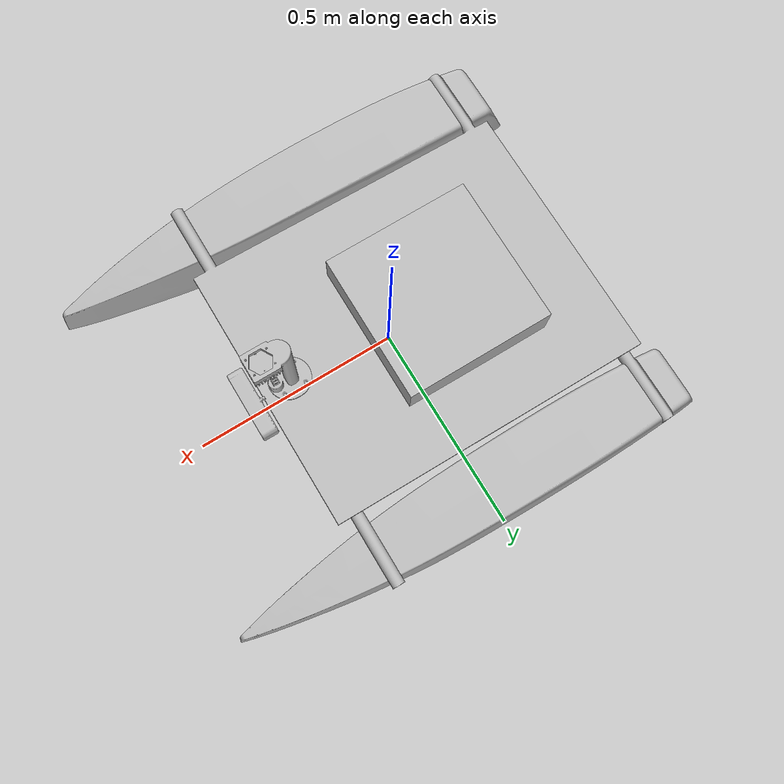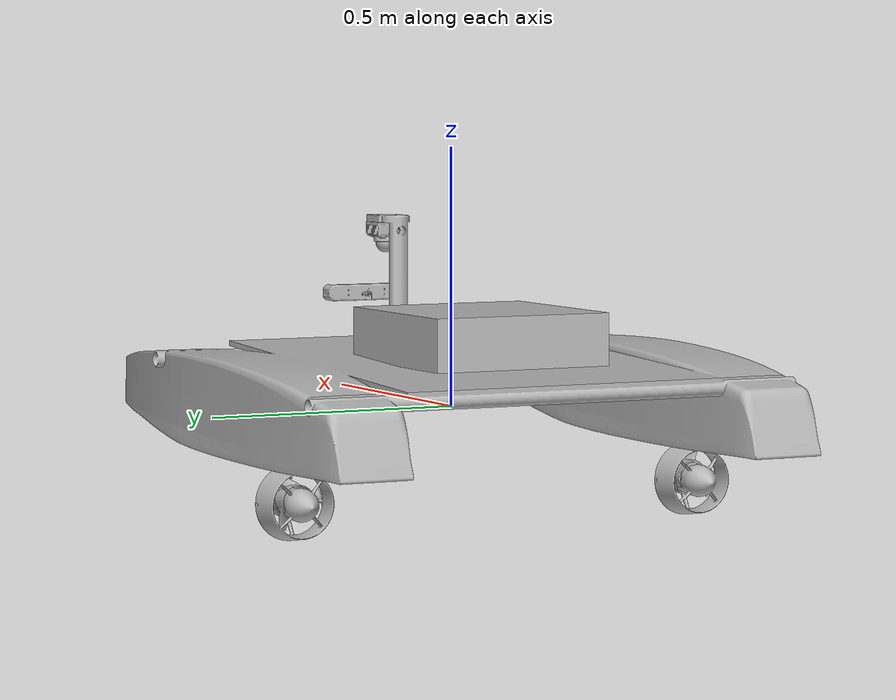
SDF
<?xml version="1.0" ?>
<sdf version="1.6">
  <model name="njord_usv">
    <link name="base_link">
      <pose>0 0 0 0 0 0</pose>
      <inertial>
        <mass>17</mass>
        <inertia>
          <ixx>1.256398</ixx>
          <ixy>-0.004728</ixy>
          <ixz>-0.028444</ixz>
          <iyy>1.475879</iyy>
          <iyz>-0.001714</iyz>
          <izz>2.65594</izz>
        </inertia>
      </inertial>
      <visual name="visual">
        <pose>0.045206 0.000013 0.019826 0 0 0</pose>
        <geometry>
          <mesh>
            <uri>package://usv/models/njord_usv/meshes/base_link_visual.obj</uri>
          </mesh>
        </geometry>
      </visual>
      <collision name="collision">
        <pose>0.045208 0.000011 0.019826 0 0 0</pose>
        <geometry>
          <mesh>
            <uri>package://usv/models/njord_usv/meshes/base_link_collision.stl</uri>
          </mesh>
        </geometry>
      </collision>
    </link>

    <link name="electronics_box_link">
      <pose>-0.121332 0.001791 0.145235 0 0 0</pose>
      <inertial>
        <mass>2</mass>
        <inertia>
          <ixx>0.023267</ixx>
          <ixy>0</ixy>
          <ixz>0</ixz>
          <iyy>0.023267</iyy>
          <iyz>0</iyz>
          <izz>0.0432</izz>
        </inertia>
      </inertial>
      <visual name="visual">
        <geometry>
          <box>
            <size>0.36 0.36 0.1</size>
          </box>
        </geometry>
      </visual>
      <collision name="collision">
        <geometry>
          <box>
            <size>0.36 0.36 0.1</size>
          </box>
        </geometry>
      </collision>
    </link>

    <link name="left_chasis_link">
      <pose>-0.187331 0.42177 -0.136975 0 0 0</pose>
      <inertial>
        <mass>0.6</mass>
        <inertia>
          <ixx>0.001182</ixx>
          <ixy>0</ixy>
          <ixz>0.000004</ixz>
          <iyy>0.0011</iyy>
          <iyz>0.000002</iyz>
          <izz>0.001073</izz>
        </inertia>
      </inertial>
      <visual name="visual">
        <pose>-0.011552 -0.001199 -0.005078 0 0 0</pose>
        <geometry>
          <mesh>
            <uri>package://usv/models/njord_usv/meshes/left_chasis_link_visual.obj</uri>
          </mesh>
        </geometry>
      </visual>
      <collision name="collision">
        <pose>-0.011552 -0.001199 -0.005078 0 0 0</pose>
        <geometry>
          <mesh>
            <uri>package://usv/models/njord_usv/meshes/left_chasis_link_collision.stl</uri>
          </mesh>
        </geometry>
      </collision>
    </link>

    <link name="left_propeller_link">
      <pose>-0.187331 0.42177 -0.136975 0 0 0</pose>
      <inertial>
        <mass>0.13</mass>
        <inertia>
          <ixx>0.000112</ixx>
          <ixy>0</ixy>
          <ixz>0</ixz>
          <iyy>0.000074</iyy>
          <iyz>0</iyz>
          <izz>0.000074</izz>
        </inertia>
      </inertial>
      <visual name="visual">
        <pose>-0.002943 -0.008474 -0.003957 0 0 0</pose>
        <geometry>
          <mesh>
            <uri>package://usv/models/njord_usv/meshes/left_propeller_link_visual.obj</uri>
          </mesh>
        </geometry>
      </visual>
      <collision name="collision">
        <pose>-0.002944 -0.008474 -0.003957 0 0 0</pose>
        <geometry>
          <mesh>
            <uri>package://usv/models/njord_usv/meshes/left_propeller_link_collision.stl</uri>
          </mesh>
        </geometry>
      </collision>
    </link>

    <!-- Barometer - For PX4 SITL Preflight Check Fix -->

    <link name="barometer_link">
      <pose>0 0 0 0 0 0</pose>

      <sensor name="air_pressure_sensor" type="air_pressure">
        <gz_frame_id>barometer_link</gz_frame_id>
				<always_on>1</always_on>
				<update_rate>50</update_rate>
				<air_pressure>
					<pressure>
						<noise type="gaussian">
							<mean>0</mean>
							<stddev>0.01</stddev>
						</noise>
					</pressure>
				</air_pressure>
			</sensor>
    </link>

    <joint name="barometer_joint" type="fixed">
      <parent>base_link</parent>
      <child>barometer_link</child>
    </joint>

    <link name="lidar_camera_mount_link">
      <pose>0.279247 -0.011004 0.202049 0 0 0</pose>
      <inertial>
        <mass>0.1</mass>
        <inertia>
          <ixx>0.000567</ixx>
          <ixy>0</ixy>
          <ixz>-0.000065</ixz>
          <iyy>0.000601</iyy>
          <iyz>0.000001</iyz>
          <izz>0.00012</izz>
        </inertia>
      </inertial>
      <visual name="visual">
        <pose>-0.009476 0.003052 0.034499 0 0 0</pose>
        <geometry>
          <mesh>
            <uri>package://usv/models/njord_usv/meshes/lidar_camera_mount_link_visual.obj</uri>
          </mesh>
        </geometry>
      </visual>
      <collision name="collision">
        <pose>-0.009476 0.003052 0.034499 0 0 0</pose>
        <geometry>
          <mesh>
            <uri>package://usv/models/njord_usv/meshes/lidar_camera_mount_link_collision.stl</uri>
          </mesh>
        </geometry>
      </collision>
    </link>

    <link name="lidar_link">
      <pose>0.293147 -0.006652 0.3 3.14159 0 0</pose>
      <inertial>
        <mass>0.265</mass>
        <inertia>
          <ixx>0.000123</ixx>
          <ixy>0</ixy>
          <ixz>0.000001</ixz>
          <iyy>0.000133</iyy>
          <iyz>0</iyz>
          <izz>0.00015</izz>
        </inertia>
      </inertial>
      <visual name="visual">
        <pose>0.005373 0.000172 -0.014212 0 0 0</pose>
        <geometry>
          <mesh>
            <uri>package://usv/models/njord_usv/meshes/lidar_link_visual.obj</uri>
          </mesh>
        </geometry>
      </visual>
      <collision name="collision">
        <pose>0.005372 0.000172 -0.014212 0 0 0</pose>
        <geometry>
          <mesh>
            <uri>package://usv/models/njord_usv/meshes/lidar_link_collision.stl</uri>
          </mesh>
        </geometry>
      </collision>
      <sensor name="livox_lidar" type="gpu_lidar">
        <gz_frame_id>lidar_link</gz_frame_id>
        <always_on>true</always_on>
        <update_rate>10</update_rate>
        <visualize>false</visualize>
        <pose>0 0 -0.02 0 0 0</pose>
        <ray>
          <visibility_mask>4294967293</visibility_mask>
          <scan>
            <horizontal>
              <samples>1080</samples>
              <resolution>1</resolution>
              <min_angle>-3.141593</min_angle>
              <max_angle>3.141593</max_angle>
            </horizontal>
            <vertical>
              <samples>16</samples>
              <resolution>1</resolution>
              <min_angle>-0.08727</min_angle>
              <max_angle>0.08727</max_angle>
            </vertical>
          </scan>
          <range>
            <min>0.1</min>
            <max>40</max>
            <resolution>0.01</resolution>
          </range>
        </ray>
      </sensor>
    </link>
    <link name="right_chasis_link">
      <pose>-0.187331 -0.418227 -0.136975 0 0 0</pose>
      <inertial>
        <mass>0.6</mass>
        <inertia>
          <ixx>0.001181</ixx>
          <ixy>0</ixy>
          <ixz>0.000005</ixz>
          <iyy>0.0011</iyy>
          <iyz>0</iyz>
          <izz>0.001074</izz>
        </inertia>
      </inertial>
      <visual name="visual">
        <pose>-0.01155 -0.001195 -0.005076 0 0 0</pose>
        <geometry>
          <mesh>
            <uri>package://usv/models/njord_usv/meshes/right_chasis_link_visual.obj</uri>
          </mesh>
        </geometry>
      </visual>
      <collision name="collision">
        <pose>-0.01155 -0.001195 -0.005076 0 0 0</pose>
        <geometry>
          <mesh>
            <uri>package://usv/models/njord_usv/meshes/right_chasis_link_collision.stl</uri>
          </mesh>
        </geometry>
      </collision>
    </link>

    <link name="right_propeller_link">
      <pose>-0.187331 -0.418227 -0.136975 0 0 0</pose>
      <inertial>
        <mass>0.13</mass>
        <inertia>
          <ixx>0.000112</ixx>
          <ixy>0</ixy>
          <ixz>0</ixz>
          <iyy>0.000074</iyy>
          <iyz>0</iyz>
          <izz>0.000074</izz>
        </inertia>
      </inertial>
      <visual name="visual">
        <pose>0.002943 0.003983 0.008494 0 0 0</pose>
        <geometry>
          <mesh>
            <uri>package://usv/models/njord_usv/meshes/right_propeller_link_visual.obj</uri>
          </mesh>
        </geometry>
      </visual>
      <collision name="collision">
        <pose>0.002943 0.003983 0.008494 0 0 0</pose>
        <geometry>
          <mesh>
            <uri>package://usv/models/njord_usv/meshes/right_propeller_link_collision.stl</uri>
          </mesh>
        </geometry>
      </collision>
    </link>

    <link name="zed_camera_link">
      <pose>0.345378 0.02 0.2 0 0 0</pose>
      <inertial>
        <mass>0.24</mass>
        <inertia>
          <ixx>0.000056</ixx>
          <ixy>0</ixy>
          <ixz>0.000002</ixz>
          <iyy>0.000503</iyy>
          <iyz>0</iyz>
          <izz>0.000517</izz>
        </inertia>
      </inertial>
      <visual name="visual">
        <pose>0.004301 0.001346 0.001671 0 0 -1.570796</pose>
        <geometry>
          <mesh>
            <uri>package://usv/models/njord_usv/meshes/zed_camera_link_visual.obj</uri>
          </mesh>
        </geometry>
      </visual>
      <collision name="collision">
        <pose>0.004301 0.001343 0.001671 0 0 0</pose>
        <geometry>
          <mesh>
            <uri>package://usv/models/njord_usv/meshes/zed_camera_link_collision.stl</uri>
          </mesh>
        </geometry>
      </collision>
      <sensor name="zed_camera" type="camera">
        <gz_frame_id>zed_camera_link_optical</gz_frame_id>
        <always_on>true</always_on>
        <update_rate>10</update_rate>
        <visualize>false</visualize>
        <pose relative_to="zed_camera_link">0.04 0 0 0 0 0</pose>
        <camera>
          <horizontal_fov>1.919862</horizontal_fov>
          <image>
            <width>960</width>
            <height>600</height>
            <format>R8G8B8</format>
          </image>
          <clip>
            <near>0.02</near>
            <far>300</far>
          </clip>
        </camera>
      </sensor>
      <sensor name="zed_depth_camera" type="depth_camera">
        <gz_frame_id>zed_camera_link_optical</gz_frame_id>
        <always_on>true</always_on>
        <update_rate>10</update_rate>
        <visualize>false</visualize>
        <pose relative_to="zed_camera_link">0.04 0 0 0 0 0</pose>
        <camera>
          <horizontal_fov>1.919862</horizontal_fov>
          <image>
            <width>960</width>
            <height>600</height>
            <format>R_FLOAT32</format>
          </image>
          <clip>
            <near>0.5</near>
            <far>20</far>
          </clip>
        </camera>
        <depth_camera>
          <output>
            <type>depth</type>
          </output>
        </depth_camera>
      </sensor>
    </link>

    <link name="zed_camera_link_optical">
    </link>

    <link name="navsat_link">
      <pose>0.0 0.0 0.1 0 0 0</pose>
      <sensor name="navsat_sensor" type="navsat">
        <gz_frame_id>navsat_link</gz_frame_id>
        <pose>0.0 0.0 0.05 0 0 0</pose>
        <always_on>1</always_on>
        <update_rate>30</update_rate>
      </sensor>
    </link>

    <link name="imu_link">
      <pose>0.0 0.0 0.1 0 0 0</pose>
      <sensor name="imu_sensor" type="imu">
        <gz_frame_id>imu_link</gz_frame_id>
        <always_on>1</always_on>
        <update_rate>250</update_rate>
        <imu>
          <angular_velocity>
            <x>
              <noise type="gaussian">
                <mean>0</mean>
                <stddev>0.0003394</stddev>
                <dynamic_bias_stddev>3.8785e-05</dynamic_bias_stddev>
                <dynamic_bias_correlation_time>1000</dynamic_bias_correlation_time>
              </noise>
            </x>
            <y>
              <noise type="gaussian">
                <mean>0</mean>
                <stddev>0.0003394</stddev>
                <dynamic_bias_stddev>3.8785e-05</dynamic_bias_stddev>
                <dynamic_bias_correlation_time>1000</dynamic_bias_correlation_time>
              </noise>
            </y>
            <z>
              <noise type="gaussian">
                <mean>0</mean>
                <stddev>0.0003394</stddev>
                <dynamic_bias_stddev>3.8785e-05</dynamic_bias_stddev>
                <dynamic_bias_correlation_time>1000</dynamic_bias_correlation_time>
              </noise>
            </z>
          </angular_velocity>
          <linear_acceleration>
            <x>
              <noise type="gaussian">
                <mean>0</mean>
                <stddev>0.004</stddev>
                <dynamic_bias_stddev>0.006</dynamic_bias_stddev>
                <dynamic_bias_correlation_time>300</dynamic_bias_correlation_time>
              </noise>
            </x>
            <y>
              <noise type="gaussian">
                <mean>0</mean>
                <stddev>0.004</stddev>
                <dynamic_bias_stddev>0.006</dynamic_bias_stddev>
                <dynamic_bias_correlation_time>300</dynamic_bias_correlation_time>
              </noise>
            </y>
            <z>
              <noise type="gaussian">
                <mean>0</mean>
                <stddev>0.004</stddev>
                <dynamic_bias_stddev>0.006</dynamic_bias_stddev>
                <dynamic_bias_correlation_time>300</dynamic_bias_correlation_time>
              </noise>
            </z>
          </linear_acceleration>
        </imu>
      </sensor>
    </link>

    <joint name="electronics_box_joint" type="fixed">
      <parent>base_link</parent>
      <child>electronics_box_link</child>
    </joint>
    <joint name="left_chasis_engine_joint" type="fixed">
      <parent>base_link</parent>
      <child>left_chasis_link</child>
    </joint>
    <joint name="left_engine_propeller_joint" type="revolute">
      <parent>left_chasis_link</parent>
      <child>left_propeller_link</child>
      <axis>
        <xyz>1 0 0</xyz>
        <limit>
          <lower>-inf</lower>
          <upper>inf</upper>
          <effort>100</effort>
          <velocity>100</velocity>
        </limit>
        <dynamics>
          <damping>0.05</damping>
          <friction>0.05</friction>
        </dynamics>
      </axis>
    </joint>
    <joint name="lidar_camera_mount_joint" type="fixed">
      <parent>base_link</parent>
      <child>lidar_camera_mount_link</child>
    </joint>
    <joint name="lidar_link_joint" type="fixed">
      <parent>lidar_camera_mount_link</parent>
      <child>lidar_link</child>
    </joint>
    <joint name="right_chasis_link_joint" type="fixed">
      <parent>base_link</parent>
      <child>right_chasis_link</child>
    </joint>
    <joint name="right_engine_propeller_joint" type="revolute">
      <parent>right_chasis_link</parent>
      <child>right_propeller_link</child>
      <axis>
        <xyz>1 0 0</xyz>
        <limit>
          <lower>-inf</lower>
          <upper>inf</upper>
          <effort>100</effort>
          <velocity>100</velocity>
        </limit>
        <dynamics>
          <damping>0.05</damping>
          <friction>0.05</friction>
        </dynamics>
      </axis>
    </joint>
    <joint name="zed_camera_link_joint" type="fixed">
      <parent>lidar_camera_mount_link</parent>
      <child>zed_camera_link</child>
    </joint>
    <joint name="zed_camera_link_optical_joint" type="fixed">
      <pose>0.345378 0.02 0.2 -1.570796 0 -1.570796</pose>
      <parent>zed_camera_link</parent>
      <child>zed_camera_link_optical</child>
    </joint>
    <joint name="navsat_joint" type="fixed">
      <parent>base_link</parent>
      <child>navsat_link</child>
    </joint>
    <joint name="imu_joint" type="fixed">
      <parent>base_link</parent>
      <child>imu_link</child>
    </joint>
    <plugin filename="libSurface.so" name="vrx::Surface">
      <link_name>base_link</link_name>
      <hull_length>1.19</hull_length>
      <hull_radius>0.105</hull_radius>
      <fluid_level>0.10</fluid_level>
      <points>
        <point>0.34 0.42 0.0</point>
        <point>-0.34 0.42 0.0</point>
      </points>
      <wavefield>
        <topic>/vrx/wavefield/parameters</topic>
      </wavefield>
    </plugin>
    <plugin filename="libSurface.so" name="vrx::Surface">
      <link_name>base_link</link_name>
      <hull_length>1.19</hull_length>
      <hull_radius>0.105</hull_radius>
      <fluid_level>0.10</fluid_level>
      <points>
        <point>0.34 -0.42 0.0</point>
        <point>-0.34 -0.42 0.0</point>
      </points>
      <wavefield>
        <topic>/vrx/wavefield/parameters</topic>
      </wavefield>
    </plugin>

    <plugin
      filename="libSimpleHydrodynamics.so"
      name="vrx::SimpleHydrodynamics">
      <link_name>base_link</link_name>
      <!-- Added mass -->
      <xDotU>6.5</xDotU>
      <yDotV>10.0</yDotV>
      <nDotR>1.5</nDotR>

      <!-- Linear and quadratic drag -->
      <xU>22.0</xU>
      <xUU>34.0</xUU>
      <yV>30.0</yV>
      <yVV>48.0</yVV>
      <zW>36.0</zW>
      <kP>18.0</kP>
      <kPP>34.0</kPP>
      <mQ>46.0</mQ>
      <mQQ>58.0</mQQ>
      <nR>48.0</nR>
      <nRR>56.0</nRR>
    </plugin>

    <plugin
      filename="gz-sim-thruster-system"
      name="gz::sim::systems::Thruster">
      <joint_name>left_engine_propeller_joint</joint_name>
      <fluid_density>1000</fluid_density>
      <propeller_diameter>0.1145</propeller_diameter>
      <velocity_control>false</velocity_control>
      <thrust_coefficient>0.0045</thrust_coefficient>
      <max_thrust_cmd>158</max_thrust_cmd>
      <min_thrust_cmd>-103</min_thrust_cmd>
    </plugin>

    <plugin
      filename="gz-sim-thruster-system"
      name="gz::sim::systems::Thruster">
      <joint_name>right_engine_propeller_joint</joint_name>
      <fluid_density>1000</fluid_density>
      <propeller_diameter>0.1145</propeller_diameter>
      <velocity_control>false</velocity_control>
      <thrust_coefficient>-0.0045</thrust_coefficient>
      <max_thrust_cmd>158</max_thrust_cmd>
      <min_thrust_cmd>-103</min_thrust_cmd>
    </plugin>
  </model>
</sdf>
